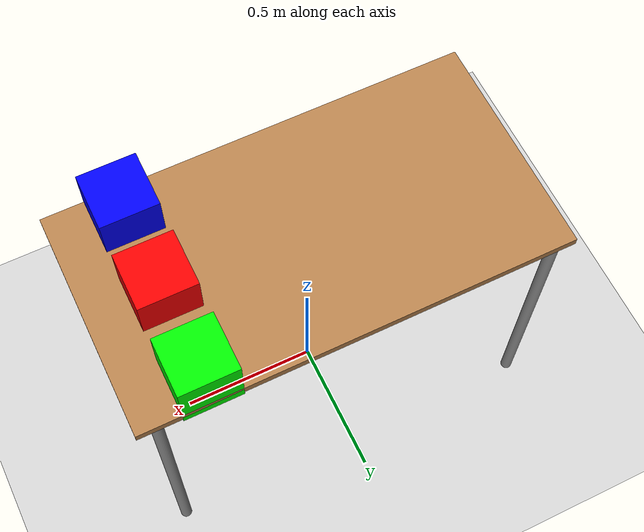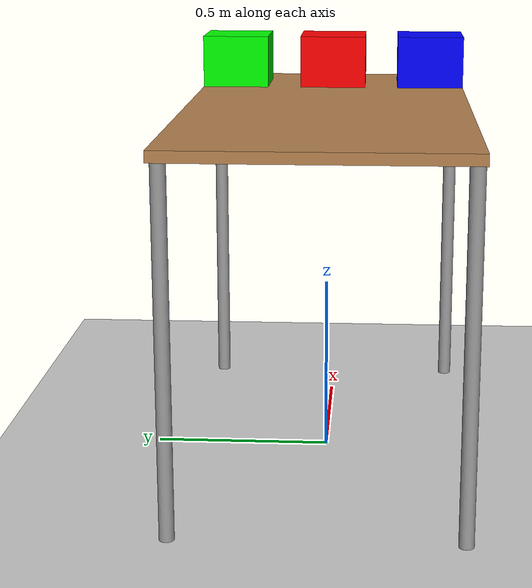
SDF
<?xml version="1.0" ?>
<sdf version="1.5">

  <world name="table">
    <!-- A global light source -->
    <include>
      <uri>model://sun</uri>
    </include>
    <!-- A ground plane -->
    <include>
      <uri>model://ground_plane</uri>
    </include>
    <!-- Table -->
    <include>
      <uri>model://table</uri>
    </include>

    <!-- Red Cube -->
        <model name="red_cube">
      <pose>0.5 0 1.07 0 0 0</pose>
      <link name="link">
        <visual name="visual">
          <geometry>
            <box>
              <size>0.2 0.2 0.2</size>
            </box>
          </geometry>
          <material>
            <ambient>1 0 0 1</ambient>
            <diffuse>1 0 0 1</diffuse>
          </material>
        </visual>
        <collision name="collision">
          <geometry>
            <box>
              <size>0.2 0.2 0.2</size>
            </box>
          </geometry>
        </collision>
      </link>
    </model>
    <!-- Green Cube -->
    <model name="green_cube">
      <pose>0.5 0.3 1.07 0 0 0</pose>
      <link name="link">
        <visual name="visual">
          <geometry>
            <box>
              <size>0.2 0.2 0.2</size>
            </box>
          </geometry>
          <material>
            <ambient>0 1 0 1</ambient>
            <diffuse>0 1 0 1</diffuse>
          </material>
        </visual>
        <collision name="collision">
          <geometry>
            <box>
              <size>0.2 0.2 0.2</size>
            </box>
          </geometry>
        </collision>
      </link>
    </model>

    <!-- Blue Cube -->
    <model name="blue_cube">
      <pose>0.5 -0.3 1.07 0 0 0</pose>
      <link name="link">
        <visual name="visual">
          <geometry>
            <box>
              <size>0.2 0.2 0.2</size>
            </box>
          </geometry>
          <material>
            <ambient>0 0 1 1</ambient>
            <diffuse>0 0 1 1</diffuse>
          </material>
        </visual>
        <collision name="collision">
          <geometry>
            <box>
              <size>0.2 0.2 0.2</size>
            </box>
          </geometry>
        </collision>
      </link>
    </model>

  </world>
</sdf>

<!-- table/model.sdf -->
<sdf version="1.5">
  <model name="table">
    <static>true</static>
    <link name="link">
      <collision name="surface">
        <pose>0 0 1.0 0 0 0</pose>
        <geometry>
          <box>
            <size>1.5 0.8 0.03</size>
          </box>
        </geometry>
        <surface>
          <friction>
            <ode>
              <mu>0.6</mu>
              <mu2>0.6</mu2>
            </ode>
          </friction>
        </surface>
      </collision>
      <visual name="visual1">
        <pose>0 0 1.0 0 0 0</pose>
        <geometry>
          <box>
            <size>1.5 0.8 0.03</size>
          </box>
        </geometry>
        <material>
          <script>
            <uri>model://media/materials/scripts/gazebo.material</uri>
            <name>Gazebo/Wood</name>
          </script>
        </material>
      </visual>
      <collision name="front_left_leg">
        <pose>0.68 0.38 0.5 0 0 0</pose>
        <geometry>
          <cylinder>
            <radius>0.02</radius>
            <length>1.0</length>
          </cylinder>
        </geometry>
      </collision>
      <visual name="front_left_leg">
        <pose>0.68 0.38 0.5 0 0 0</pose>
        <geometry>
          <cylinder>
            <radius>0.02</radius>
            <length>1.0</length>
          </cylinder>
        </geometry>
        <material>
          <script>
            <uri>model://media/materials/scripts/gazebo.material</uri>
            <name>Gazebo/Grey</name>
          </script>
        </material>
      </visual>
      <collision name="front_right_leg">
        <pose>0.68 -0.38 0.5 0 0 0</pose>
        <geometry>
          <cylinder>
            <radius>0.02</radius>
            <length>1.0</length>
          </cylinder>
        </geometry>
      </collision>
      <visual name="front_right_leg">
        <pose>0.68 -0.38 0.5 0 0 0</pose>
        <geometry>
          <cylinder>
            <radius>0.02</radius>
            <length>1.0</length>
          </cylinder>
        </geometry>
        <material>
          <script>
            <uri>model://media/materials/scripts/gazebo.material</uri>
            <name>Gazebo/Grey</name>
          </script>
        </material>
      </visual>
      <collision name="back_right_leg">
        <pose>-0.68 -0.38 0.5 0 0 0</pose>
        <geometry>
          <cylinder>
            <radius>0.02</radius>
            <length>1.0</length>
          </cylinder>
        </geometry>
      </collision>
      <visual name="back_right_leg">
        <pose>-0.68 -0.38 0.5 0 0 0</pose>
        <geometry>
          <cylinder>
            <radius>0.02</radius>
            <length>1.0</length>
          </cylinder>
        </geometry>
        <material>
          <script>
            <uri>model://media/materials/scripts/gazebo.material</uri>
            <name>Gazebo/Grey</name>
          </script>
        </material>
      </visual>
      <collision name="back_left_leg">
        <pose>-0.68 0.38 0.5 0 0 0</pose>
        <geometry>
          <cylinder>
            <radius>0.02</radius>
            <length>1.0</length>
          </cylinder>
        </geometry>
      </collision>
      <visual name="back_left_leg">
        <pose>-0.68 0.38 0.5 0 0 0</pose>
        <geometry>
          <cylinder>
            <radius>0.02</radius>
            <length>1.0</length>
          </cylinder>
        </geometry>
        <material>
          <script>
            <uri>model://media/materials/scripts/gazebo.material</uri>
            <name>Gazebo/Grey</name>
          </script>
        </material>
      </visual>
    </link>
  </model>
</sdf>
